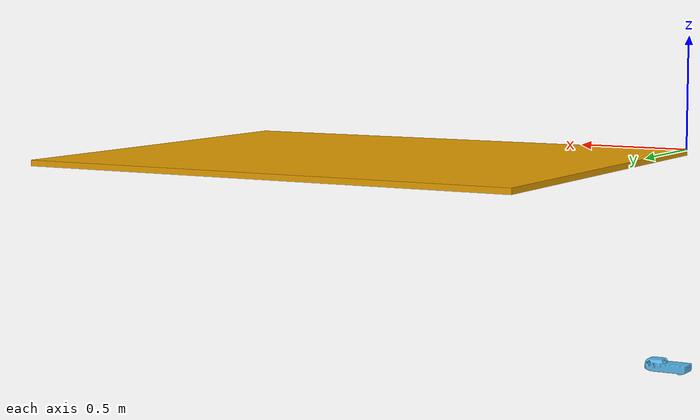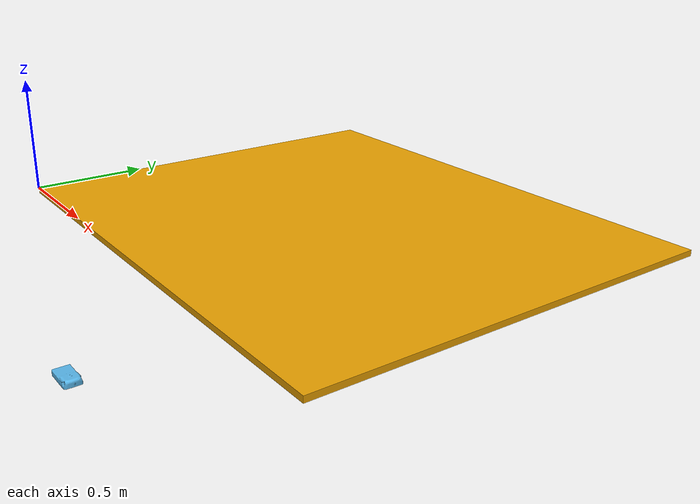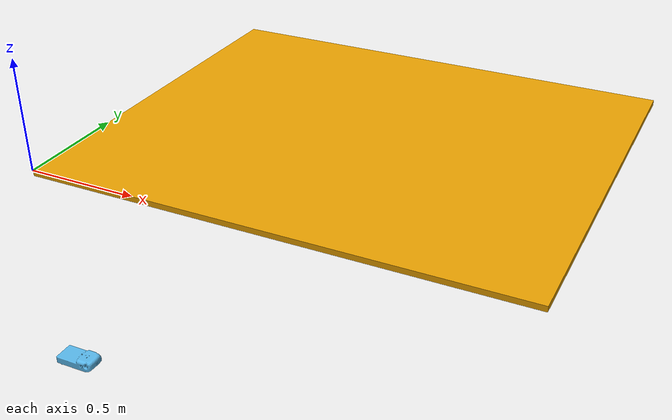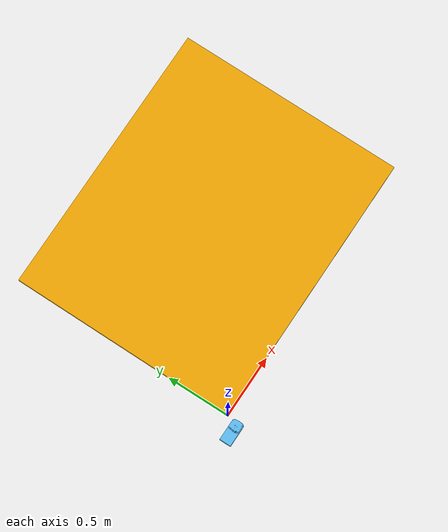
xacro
<?xml version="1.0"?>
<!-- xacro - -inorder size:=5 world.urdf.xacro -->
<robot name="world" xmlns:xacro="http://ros.org/wiki/xacro">
  <xacro:arg name="size" default="6" />

  <link name="world">
    <visual>
      <geometry>
        <mesh filename="package://amsagv/meshes/ground.dae" />
      </geometry>
      <origin xyz="0 0 0" rpy="0 0 0" />
    </visual>
  </link>

  <xacro:macro name="agv" params="id">
    <link name="${id}">
      <visual>
        <geometry>
          <mesh filename="package://amsagv/meshes/${id}.dae" />
        </geometry>
        <origin xyz="0 0 0" rpy="0 0 0" />
      </visual>
    </link>

    <joint name="world_${id}" type="fixed">
      <parent link="world" />
      <child link="${id}" />
      <origin xyz="0 0 -1" rpy="0 0 0" />
    </joint>
  </xacro:macro>

  <xacro:macro name="agv_loop" params="n">
    <xacro:if value="${n}">
      <xacro:agv_loop n="${n-1}" />
      <xacro:agv id="agv${n-1}" />
    </xacro:if>
  </xacro:macro>
  <xacro:agv_loop n="$(arg size)" />
</robot>
